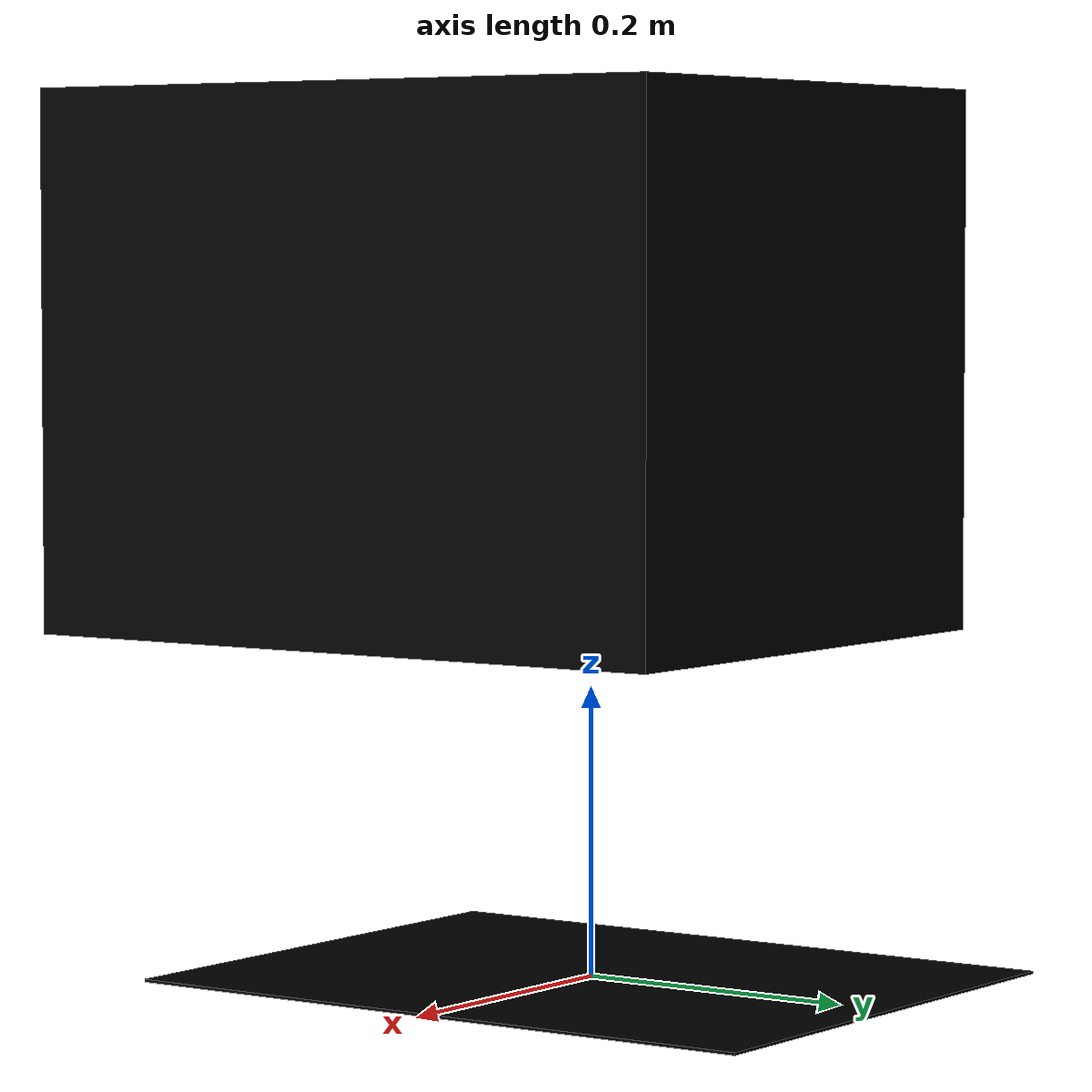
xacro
<?xml version="1.0"?>
<robot name="handheld_mapperbot" xmlns:xacro="http://ros.org/wiki/xacro">
  <xacro:include filename="$(find handheld_mapper_description)/urdf/handheld_mapper_library.urdf.xacro" />

  <link name="base_footprint"/>

  <joint name="base_joint" type="fixed">
      <origin xyz="0 0 0" rpy="0 0 0" />
      <parent link="base_footprint"/>
      <child link="base_link" />
  </joint>

  <link name="base_link">
    <visual>
      <geometry>
        <box size=".38 .48 .002"/>
      </geometry>
      <origin rpy="0 0 0" xyz="0 0 0"/>
      <material name="red">
        <color rgba="0 0 0 0"/>
      </material>
    </visual>
  </link>

  <handheld_mapper parent="base_link" x_loc="0.10" y_loc="0.0" z_loc="0.245" r_deg="0.0" p_deg="0.0" y_deg="0.0"/>
</robot>

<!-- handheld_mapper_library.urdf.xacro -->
<!--
  The complete handheld_mapper library of xacros for easy reference
 -->
<robot name="handheld" xmlns:xacro="http://ros.org/wiki/xacro">
  <!-- Laser Sensors -->
  <xacro:include filename="$(find handheld_mapper_description)/urdf/sensors/hokuyo_04lx_laser.urdf.xacro"/>
  <!-- Stack -->
  <xacro:include filename="$(find handheld_mapper_description)/urdf/handheld_mapper.urdf.xacro"/>

</robot>

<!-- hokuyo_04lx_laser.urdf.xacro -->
<root xmlns:sensor="http://playerstage.sourceforge.net/gazebo/xmlschema/#sensor"
      xmlns:controller="http://playerstage.sourceforge.net/gazebo/xmlschema/#controller"
      xmlns:interface="http://playerstage.sourceforge.net/gazebo/xmlschema/#interface"
      xmlns:xacro="http://ros.org/wiki/xacro">

  <xacro:macro name="hokuyo_04lx_laser" params="name parent *origin">
    <joint name="${name}_joint" type="fixed">
      <axis xyz="0 1 0" />
      <insert_block name="origin" />
      <parent link="${parent}_link"/>
      <child link="${name}_link"/>
    </joint>
    <link name="${name}_link">
      <inertial>
        <mass value="0.001" />
        <origin xyz="0 0 0" rpy="0 0 0" />
        <inertia ixx="0.0001" ixy="0" ixz="0" iyy="0.000001" iyz="0" izz="0.0001" />
      </inertial>
      <visual>
        <origin xyz="0 0 0" rpy="0 0 0" />
        <geometry>
          <mesh filename="package://handheld_mapper_description/meshes/hokuyo.dae" scale="0.0254 0.0254 0.0254" />
        </geometry>
      </visual>
    </link>

    <!-- go from the base of the laser to the actual sensor location -->
    <joint name="${name}_laser_joint" type="fixed">
      <origin xyz="0 0 0.058" />
      <parent link="${name}_link"/>
      <child link="${name}_laser_link"/>
    </joint>
    <link name="${name}_laser_link" type="laser">
      <inertial>
        <mass value="0.001" />
        <origin xyz="0 0 0" rpy="0 0 0" />
        <inertia ixx="0.0001" ixy="0" ixz="0" iyy="0.000001" iyz="0" izz="0.0001" />
      </inertial>
    </link>
  </xacro:macro>

</root>

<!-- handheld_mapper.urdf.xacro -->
<robot name="handheld_mapper" xmlns:xacro="http://ros.org/wiki/xacro">
  <!-- Included URDF Files -->

  <xacro:macro name="handheld_mapper" params="parent x_loc y_loc z_loc r_deg p_deg y_deg">
  <joint name="handheld_mapper_joint" type="fixed">
      <origin xyz="${x_loc} ${y_loc} ${z_loc}" rpy="${r_deg} ${p_deg} ${y_deg}"/>
      <parent link="${parent}"/>
      <child link="laser_base_link"/>
  </joint>

  <link name="laser_base_link">
    <visual>
      <geometry>
        <box size=".38 .48 .36"/>
      </geometry>
      <origin rpy="0 0 0" xyz="0 0 .18"/>
      <material name="red">
        <color rgba="0 0 0 0"/>
      </material>
    </visual>
  </link>

  <!-- laser -->
    <xacro:hokuyo_04lx_laser name="hokuyo" parent="laser_base">
      <origin xyz="-0.075 0 0.003" rpy="0 0 0" />
    </xacro:hokuyo_04lx_laser>

    <!-- imu -->
    <joint name="base_to_imu" type="fixed">
      <parent link="laser_base_link"/>
      <child link="imu"/>
      <origin xyz="0.075 0.01 0.04"/>
    </joint>

    <link name="imu">
      <visual>
        <geometry>
          <box size=".013 .024 .002"/>
        </geometry>
        <origin rpy="0 0 0" xyz="0 0 0"/>
      <material name="black">
        <color rgba="0 0 0 1"/>
      </material>

      </visual>
    </link>
  </xacro:macro>
</robot>
